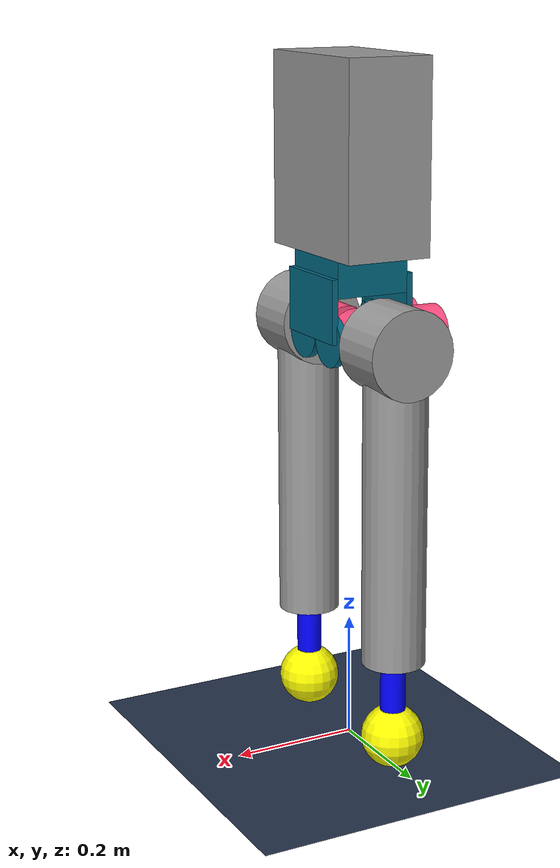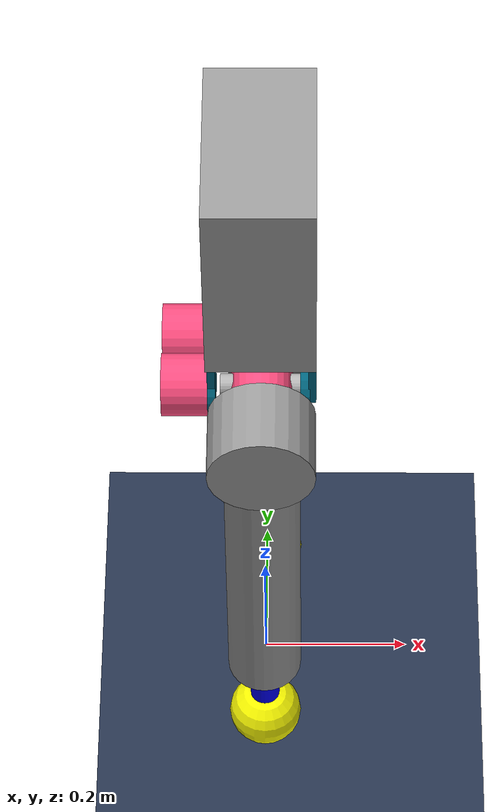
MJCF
<mujoco model="g1 scene">
    <include file="prismatic_pointfoot.xml"/>

    <option timestep="0.001" gravity="0 0 -9.81" tolerance="1e-08" cone="elliptic" jacobian="dense" solver="Newton" noslip_iterations="10" integrator="Euler" iterations="30" impratio="10.0"/>
      <option>
          <flag override="enable" gravity="enable"/>
      </option>

    <visual>
      <headlight diffuse="0.6 0.6 0.6" ambient="0.1 0.1 0.1" specular="0.9 0.9 0.9"/>
      <rgba haze="0.15 0.25 0.35 1"/>
      <global azimuth="140" elevation="-20"/>
    </visual>

    <asset>
        <texture name="texplane" type="2d" builtin="checker" width="512" height="512" mark="edge" rgb1="0.2 0.3 0.4" rgb2="0.1 0.1 0.2" markrgb="1 1 1"/>
        <texture name="texgeom" type="cube" builtin="flat" width="512" height="512" mark="cross" rgb1="0.8 0.6 0.4" rgb2="0.8 0.6 0.4" markrgb="1 1 1"/>
        <texture name="sky" type="skybox" builtin="gradient" width="512" height="512" rgb1="1 1 1" rgb2="0.6 0.8 1"/>

        <material name="MatGnd" reflectance="0" specular="1" shininess="1" rgba="0 0.4 0.5 1"/>
        <material name="MatGeom" texture="texgeom" texuniform="true"/>
        <material name="MatPlane" texture="texplane" reflectance='0' texrepeat="1 1" texuniform="true"/>

    </asset>

    <worldbody>
      <light directional="true" pos=" 5 -5 5" dir="-0.5  0.5 -1" diffuse="0.3 0.3 0.3" specular="0.0 0.0 0.0" castshadow="false"/>
      <light directional="true" pos=" 5  5 5" dir="-0.5 -0.5 -1" diffuse="0.3 0.3 0.3" specular="0.0 0.0 0.0" castshadow="false"/>
      <light directional="true" pos="-5  5 5" dir=" 0.5 -0.5 -1" diffuse="0.3 0.3 0.3" specular="0.0 0.0 0.0" castshadow="false"/>
      <light directional="true" pos="-5 -5 5" dir=" 0.5  0.5 -1" diffuse="0.3 0.3 0.3" specular="0.0 0.0 0.0" castshadow="false"/>

      <geom name="Ground" type="plane" pos="0 0 0" material="MatPlane" size="0 0 1" friction="1 .1 .1" condim="6" conaffinity="3" contype="3" group="2"/>
    </worldbody>
  </mujoco>

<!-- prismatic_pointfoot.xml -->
<mujoco model="template model">
    <compiler angle="degree" coordinate="local" inertiafromgeom="false" autolimits="true" texturedir="PNG"/>

    <option timestep="0.001" gravity="0 0 -9.81" integrator="Euler" o_solref="0.005 0.2" o_solimp="0.95 0.98 0.01 0.5 2" cone="elliptic" jacobian="auto" solver="Newton" tolerance="1e-10" impratio="1.0"/>
    <option>
        <flag gravity="enable" override="enable"/>
    </option>

    <visual>
        <global fovy="45" linewidth="1" glow="0.3"/>
        <quality shadowsize="4096" numslices="48"/>
        <map stiffness="50" stiffnessrot="100"/>
        <scale forcewidth="0.05" contactwidth="0.15" contactheight="0.1" connect="0.1" com="0.2" jointlength="0.25" jointwidth="0.05"
                    actuatorlength="0.5" actuatorwidth="0.3" framelength="1" framewidth="0.03"/>
        <rgba haze="0.6 0.8 0.9 1" force="1 0 0 0.5" com="0 0 1 1"/>
    </visual>

    <default>
        <geom contype="1" conaffinity="1" condim="3" material="MatGnd"/>
        <joint limited="false" damping="0.1" armature="0.1" stiffness="0" frictionloss="0.1"/>
        <motor gear="1 0 0 0 0 0" ctrllimited="false" ctrlrange="-100 100"/>
    </default>

    <worldbody>

        <body name="Pelvis" pos="0 0 0.775">
            <inertial pos="2e-05 -2.1e-20 0.15" quat="1 0 -0.00026 0" mass="12" diaginertia="0.18 0.15 0.071"/>
            <joint name="floating_body" pos="0 0 0" type="free" armature="0"/>

            <geom type="box" pos="0 0 0" euler="0 0 0" size="0.06 0.07 0.03" rgba="0.5 0.5 0.5 1"/>
            <geom type="box" pos="0 0 0.18" euler="0 0 0" size="0.07 0.12 0.15" rgba="0.6 0.6 0.6 1 "/>

            <geom type="box" pos="-0.065 0 -0.05" euler="0 0 0" size="0.005 0.07 0.05" rgba="0.5 0.5 0.5 1"/>
            <geom type="cylinder" pos="-0.065 -0.041 -0.1" euler="0 90 0" size="0.041 0.005" rgba="0.5 0.5 0.5 1"/>
            <geom type="cylinder" pos="-0.065  0.041 -0.1" euler="0 90 0" size="0.041 0.005" rgba="0.5 0.5 0.5 1"/>

            <geom type="box" pos="0.065 0 -0.05" euler="0 0 0" size="0.005 0.07 0.05" rgba="0.5 0.5 0.5 1"/>
            <geom type="cylinder" pos="0.056 -0.041 -0.1" euler="0 90 0" size="0.041 0.006" rgba="0.5 0.5 0.5 1"/>
            <geom type="cylinder" pos="0.056 0.041 -0.1" euler="0 90 0" size="0.041 0.006" rgba="0.5 0.5 0.5 1"/>

            <!-- Roll Actuator Geometry -->
            <geom type="cylinder" pos="-0.1  0.041 -0.1" euler="0 90 0" size="0.041 0.03" rgba="1.0 0.3 0.5 1"/>
            <geom type="cylinder" pos="-0.1 -0.041 -0.1" euler="0 90 0" size="0.041 0.03" rgba="1.0 0.3 0.5 1"/>

            <body name="left_hip_roll" pos="0 0.041 -0.1">
                <inertial pos="0 0.017 0" quat="0.5 0.5 -0.5 0.5" mass="0.58" diaginertia="0.00072 0.00066 0.00048"/>
                <joint name="left_hip_roll" type="hinge" axis="1 0 0" armature="0.1" limited="true" range="-90 90" springref="0" springdamper="0.05 1"/>
                <geom type="cylinder" pos="0.0 0.02 0.0" size=".04 0.05" rgba="1.0 0.3 0.5 1" euler="90 0 0" />
                <geom type="cylinder" pos="0.0 -0.0 0.0" euler="0 90 0" size="0.015 0.054" rgba="0.7 0.7 0.7 1"/>

                <body name="left_hip_pitch" pos="0 0.1 0">
                    <inertial pos="0 0 -0.18" quat="0.71 0 0 0.71" mass="5.5" diaginertia="0.16 0.16 0.0081"/>
                    <joint name="left_hip_pitch" type="hinge" axis="0 -1 0" limited="true" range="-60 60" pos="0 0 0.0" />
                    <geom type="cylinder" size=".07 0.05" rgba="0.6 0.6 0.6 1" euler="90 0 0" />
                    <geom type="cylinder" pos="0. 0. -0.25" size=".05 0.25" rgba="0.6 0.6 0.6 1" euler="0 0 90" />

                    <body name="left_foot" pos="0 0 -0.5" euler="180 0 0">
                        <inertial pos="0 0 0.078" quat="1 0 0 0" mass="0.84" diaginertia="0.0053 0.0053 0.00059"/>
                        <joint name="left_knee" type="slide" limited="true" range="-0.125 0.125" springref="0" springdamper="5 1" pos="0 0 0"  axis="0 0 1"/>
                        <geom type="cylinder" pos="0 0 0" size=".02 0.125" rgba="0 0 1 1" />
                        <geom name="lfoot" type="sphere" pos="0 0 0.125" size="0.05" rgba="1 1 .0 1" />
                        <site name="left_ee" pos="0 0 0.125" type="sphere" euler="180 0 0" size="0.02" rgba="0.1 0.5 2.2 1" />
                    </body>
                </body>
            </body>

            <body name="right_hip_roll" pos="0 -0.041 -0.1">
                <inertial pos="0 -0.017 0" quat="0.5 0.5 -0.5 0.5" mass="0.58" diaginertia="0.00072 0.00066 0.00048"/>
                <joint name="right_hip_roll" type="hinge" axis="1 0 0" armature="0.1" limited="true" range="-90 90" springref="0" springdamper="0.05 1"/>
                <geom type="cylinder" pos="0.0 -0.02 0.0" size=".04 0.05" rgba="1.0 0.3 0.5 1" euler="90 0 0" />
                <geom type="cylinder" pos="0.0 -0.0 0.0" euler="0 90 0" size="0.015 0.054" rgba="0.7 0.7 0.7 1"/>

                <body name="right_hip_pitch" pos="0 -0.1 0.0">
                    <inertial pos="0 0 -0.18" quat="0.71 0 0 0.71" mass="5.5" diaginertia="0.16 0.16 0.0081"/>
                    <joint name="right_hip_pitch" type="hinge" axis="0 -1 0" limited="true" range="-60 60" pos="0 0 0.0"  />
                    <geom type="cylinder" size=".07 0.05" rgba="0.6 0.6 0.6 1" euler="90 0 0" />
                    <geom type="cylinder" pos="0. 0. -0.25" size=".05 0.25" rgba="0.6 0.6 0.6 1" euler="0 0 90" />

                    <body name="right_foot" pos="0 0 -0.5" euler="180 0 0">
                        <inertial pos="0 0 0.078" quat="1 0 0 0" mass="0.84" diaginertia="0.0053 0.0053 0.00059"/>
                        <joint name="right_knee" type="slide" limited="true" range="-0.125 0.125" springref="0" springdamper="5 1" pos="0 0 0" axis="0 0 1"/>
                        <geom type="cylinder" pos="0 0 0" size=".02 0.125" rgba="0 0 1 1"/>
                        <geom name="rfoot" type="sphere" pos="0 0 0.125" size="0.05" rgba="1 1 .0 1" />
                        <site name="right_ee" pos="0 0 0.125" type="sphere" euler="180 0 0" size="0.02" rgba="0.1 0.5 2.2 1" />
                    </body>
                </body>
            </body>
        </body>

    </worldbody>

    <actuator>
        <motor name="left_hip_roll" ctrllimited="false" gear="1 0 0 0 0 0" joint="left_hip_roll" />
        <motor name="left_hip_pitch" ctrllimited="false" gear="1 0 0 0 0 0" joint="left_hip_pitch" />
        <motor name="left_knee" ctrllimited="false" gear="1 0 0 0 0 0" joint="left_knee" />
        <motor name="right_hip_roll" ctrllimited="false" gear="1 0 0 0 0 0" joint="right_hip_roll" />
        <motor name="right_hip_pitch" ctrllimited="false" gear="1 0 0 0 0 0" joint="right_hip_pitch" />
        <motor name="right_knee" ctrllimited="false" gear="1 0 0 0 0 0" joint="right_knee" />
    </actuator>

    <sensor>
        <framepos objtype="site" objname="left_ee" />
        <framepos objtype="site" objname="right_ee" />
    </sensor>

</mujoco>
